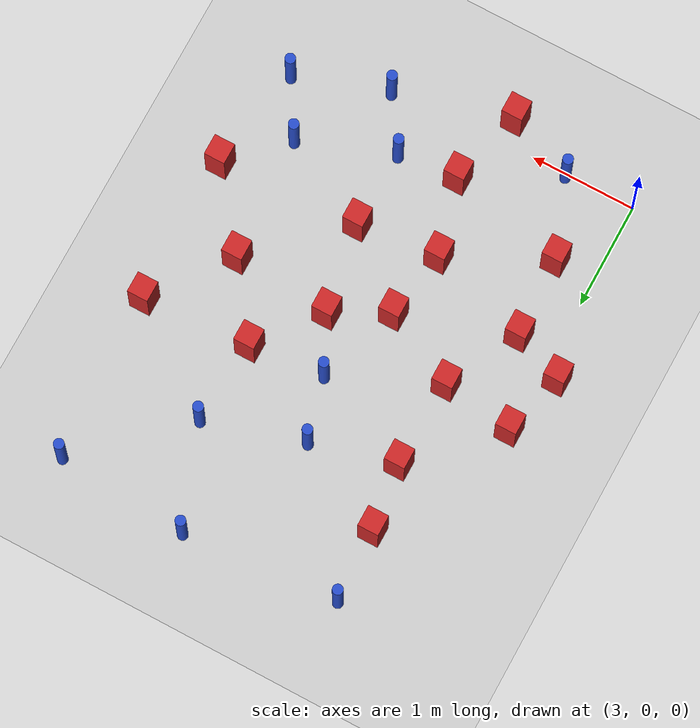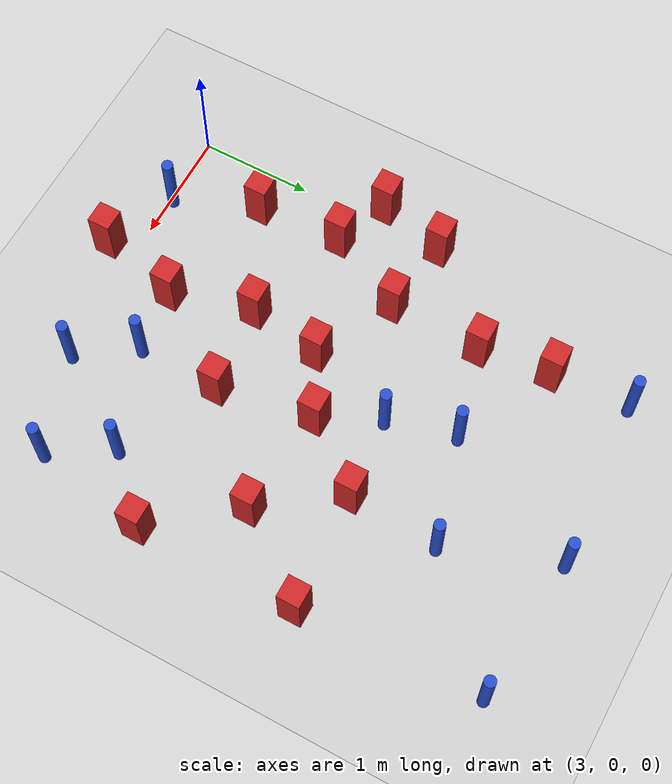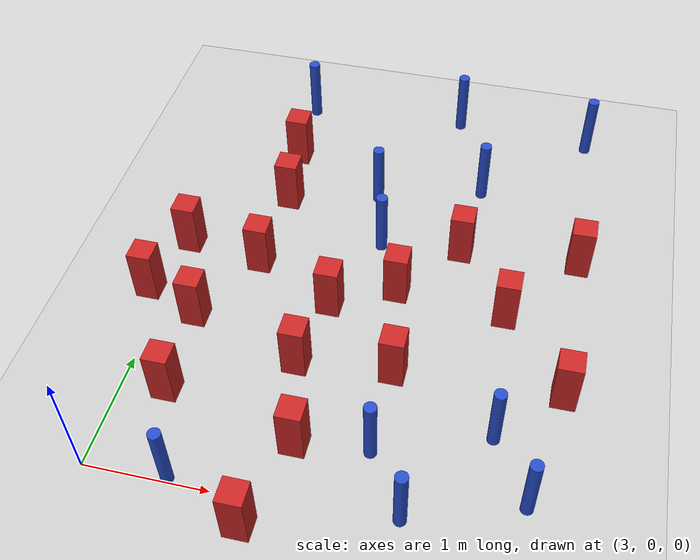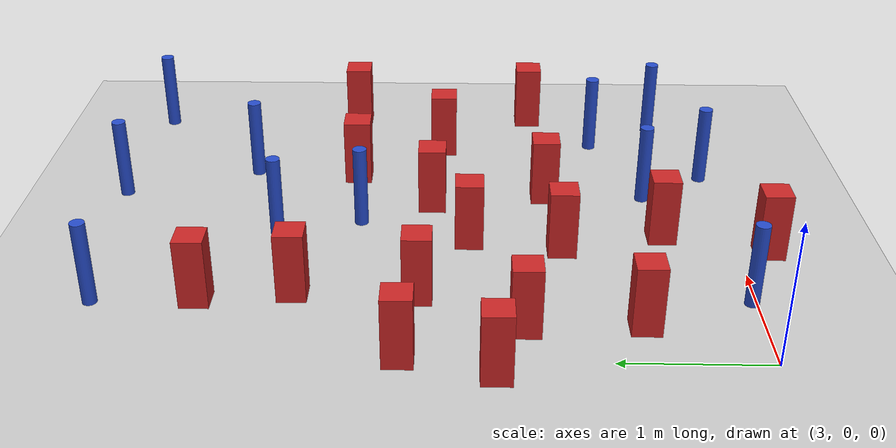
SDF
<sdf version="1.6">
 <world name="default">
  <model name="ground_plane">
   <static>1</static>
   <link name="link">
    <collision name="collision">
     <geometry><plane><normal>0 0 1</normal><size>100 100</size></plane></geometry>
     <surface><friction><ode><mu>100</mu><mu2>50</mu2></ode></friction></surface>
    </collision>
    <visual name="visual">
     <cast_shadows>0</cast_shadows>
     <geometry><plane><normal>0 0 1</normal><size>100 100</size></plane></geometry>
     <material>
      <ambient>1.0 1.0 1.0 1.0</ambient>
      <diffuse>0.8 0.8 0.8 1.0</diffuse>
      <specular>0.01 0.01 0.01 1.000000</specular>
     </material>
    </visual>
   </link>
  </model>
  <model name="pole_obstacle5">
   <static>true</static>
   <pose>4.51118579981 3.26232769423 2.88873142074e-08 -9.90536690245e-09 4.6021994898e-07 -1.20965994966e-07</pose>
   <link name="link">
    <pose>0 0 0.3 0 -0 0</pose>
    <inertial>
     <mass>1</mass>
     <inertia><ixx>0.145833</ixx><ixy>0</ixy><ixz>0</ixz><iyy>0.145833</iyy><iyz>0</iyz><izz>0.125</izz></inertia>
    </inertial>
    <collision name="collision">
     <geometry><cylinder><radius>0.05</radius><length>.6</length></cylinder></geometry>
    </collision>
    <visual name="visual">
     <geometry><cylinder><radius>0.05</radius><length>.6</length></cylinder></geometry>
     <material>
      <script><name>Gazebo/Blue</name><uri>file://media/materials/scripts/gazebo.material</uri></script>
     </material>
    </visual>
   </link>
  </model>
  <model name="square_post_obstacle20">
   <static>true</static>
   <pose>5.0686060429 1.31491274557 8.22691968438e-08 7.2212513382e-06 -7.54495500217e-07 2.29674213826e-05</pose>
   <link name="link">
    <pose>0 0 0.25 0 -0 0</pose>
    <inertial>
     <mass>100</mass>
     <inertia>
      <ixx>0.166667</ixx>
      <ixy>0</ixy>
      <ixz>0</ixz>
      <iyy>0.166667</iyy>
      <iyz>0</iyz>
      <izz>0.166667</izz>
     </inertia>
    </inertial>
    <collision name="collision"><geometry><box><size>.2 .2 .5</size></box></geometry></collision>
    <visual name="visual">
     <geometry><box><size>.2 .2 .5</size></box></geometry>
     <material>
      <script><name>Gazebo/Red</name><uri>file://media/materials/scripts/gazebo.material</uri></script>
     </material>
    </visual>
   </link>
  </model>
  <model name="square_post_obstacle23">
   <static>true</static>
   <pose>4.29525000992 -0.212206736863 8.22691968438e-08 7.2212513382e-06 -7.54495500217e-07 2.29674213826e-05</pose>
   <link name="link">
    <pose>0 0 0.25 0 -0 0</pose>
    <inertial>
     <mass>100</mass>
     <inertia>
      <ixx>0.166667</ixx>
      <ixy>0</ixy>
      <ixz>0</ixz>
      <iyy>0.166667</iyy>
      <iyz>0</iyz>
      <izz>0.166667</izz>
     </inertia>
    </inertial>
    <collision name="collision"><geometry><box><size>.2 .2 .5</size></box></geometry></collision>
    <visual name="visual">
     <geometry><box><size>.2 .2 .5</size></box></geometry>
     <material>
      <script><name>Gazebo/Red</name><uri>file://media/materials/scripts/gazebo.material</uri></script>
     </material>
    </visual>
   </link>
  </model>
  <model name="square_post_obstacle30">
   <static>true</static>
   <pose>5.85793373275 2.08116270976 8.22691968438e-08 7.2212513382e-06 -7.54495500217e-07 2.29674213826e-05</pose>
   <link name="link">
    <pose>0 0 0.25 0 -0 0</pose>
    <inertial>
     <mass>100</mass>
     <inertia>
      <ixx>0.166667</ixx>
      <ixy>0</ixy>
      <ixz>0</ixz>
      <iyy>0.166667</iyy>
      <iyz>0</iyz>
      <izz>0.166667</izz>
     </inertia>
    </inertial>
    <collision name="collision"><geometry><box><size>.2 .2 .5</size></box></geometry></collision>
    <visual name="visual">
     <geometry><box><size>.2 .2 .5</size></box></geometry>
     <material>
      <script><name>Gazebo/Red</name><uri>file://media/materials/scripts/gazebo.material</uri></script>
     </material>
    </visual>
   </link>
  </model>
  <model name="pole_obstacle26">
   <static>true</static>
   <pose>5.4399115924 3.53323720366 2.88873142074e-08 -9.90536690245e-09 4.6021994898e-07 -1.20965994966e-07</pose>
   <link name="link">
    <pose>0 0 0.3 0 -0 0</pose>
    <inertial>
     <mass>1</mass>
     <inertia><ixx>0.145833</ixx><ixy>0</ixy><ixz>0</ixz><iyy>0.145833</iyy><iyz>0</iyz><izz>0.125</izz></inertia>
    </inertial>
    <collision name="collision">
     <geometry><cylinder><radius>0.05</radius><length>.6</length></cylinder></geometry>
    </collision>
    <visual name="visual">
     <geometry><cylinder><radius>0.05</radius><length>.6</length></cylinder></geometry>
     <material>
      <script><name>Gazebo/Blue</name><uri>file://media/materials/scripts/gazebo.material</uri></script>
     </material>
    </visual>
   </link>
  </model>
  <model name="square_post_obstacle42">
   <static>true</static>
   <pose>3.63920087591 3.68147634943 8.22691968438e-08 7.2212513382e-06 -7.54495500217e-07 2.29674213826e-05</pose>
   <link name="link">
    <pose>0 0 0.25 0 -0 0</pose>
    <inertial>
     <mass>100</mass>
     <inertia>
      <ixx>0.166667</ixx>
      <ixy>0</ixy>
      <ixz>0</ixz>
      <iyy>0.166667</iyy>
      <iyz>0</iyz>
      <izz>0.166667</izz>
     </inertia>
    </inertial>
    <collision name="collision"><geometry><box><size>.2 .2 .5</size></box></geometry></collision>
    <visual name="visual">
     <geometry><box><size>.2 .2 .5</size></box></geometry>
     <material>
      <script><name>Gazebo/Red</name><uri>file://media/materials/scripts/gazebo.material</uri></script>
     </material>
    </visual>
   </link>
  </model>
  <model name="square_post_obstacle46">
   <static>true</static>
   <pose>4.48894644158 0.51475147384 8.22691968438e-08 7.2212513382e-06 -7.54495500217e-07 2.29674213826e-05</pose>
   <link name="link">
    <pose>0 0 0.25 0 -0 0</pose>
    <inertial>
     <mass>100</mass>
     <inertia>
      <ixx>0.166667</ixx>
      <ixy>0</ixy>
      <ixz>0</ixz>
      <iyy>0.166667</iyy>
      <iyz>0</iyz>
      <izz>0.166667</izz>
     </inertia>
    </inertial>
    <collision name="collision"><geometry><box><size>.2 .2 .5</size></box></geometry></collision>
    <visual name="visual">
     <geometry><box><size>.2 .2 .5</size></box></geometry>
     <material>
      <script><name>Gazebo/Red</name><uri>file://media/materials/scripts/gazebo.material</uri></script>
     </material>
    </visual>
   </link>
  </model>
  <model name="pole_obstacle52">
   <static>true</static>
   <pose>5.93323095157 0.895569848175 2.88873142074e-08 -9.90536689837e-09 4.60219948989e-07 -1.2096599496e-07</pose>
   <link name="link">
    <pose>0 0 0.3 0 -0 0</pose>
    <inertial>
     <mass>1</mass>
     <inertia><ixx>0.145833</ixx><ixy>0</ixy><ixz>0</ixz><iyy>0.145833</iyy><iyz>0</iyz><izz>0.125</izz></inertia>
    </inertial>
    <collision name="collision">
     <geometry><cylinder><radius>0.05</radius><length>.6</length></cylinder></geometry>
    </collision>
    <visual name="visual">
     <geometry><cylinder><radius>0.05</radius><length>.6</length></cylinder></geometry>
     <material>
      <script><name>Gazebo/Blue</name><uri>file://media/materials/scripts/gazebo.material</uri></script>
     </material>
    </visual>
   </link>
  </model>
  <model name="square_post_obstacle60">
   <static>true</static>
   <pose>3.37698838711 0.771752956563 8.22691968438e-08 7.2212513382e-06 -7.54495500217e-07 2.29674213826e-05</pose>
   <link name="link">
    <pose>0 0 0.25 0 -0 0</pose>
    <inertial>
     <mass>100</mass>
     <inertia>
      <ixx>0.166667</ixx>
      <ixy>0</ixy>
      <ixz>0</ixz>
      <iyy>0.166667</iyy>
      <iyz>0</iyz>
      <izz>0.166667</izz>
     </inertia>
    </inertial>
    <collision name="collision"><geometry><box><size>.2 .2 .5</size></box></geometry></collision>
    <visual name="visual">
     <geometry><box><size>.2 .2 .5</size></box></geometry>
     <material>
      <script><name>Gazebo/Red</name><uri>file://media/materials/scripts/gazebo.material</uri></script>
     </material>
    </visual>
   </link>
  </model>
  <model name="pole_obstacle56">
   <static>true</static>
   <pose>6.33768137172 4.39520166497 2.88873142074e-08 -9.90536690842e-09 4.60219948965e-07 -1.20965994976e-07</pose>
   <link name="link">
    <pose>0 0 0.3 0 -0 0</pose>
    <inertial>
     <mass>1</mass>
     <inertia><ixx>0.145833</ixx><ixy>0</ixy><ixz>0</ixz><iyy>0.145833</iyy><iyz>0</iyz><izz>0.125</izz></inertia>
    </inertial>
    <collision name="collision">
     <geometry><cylinder><radius>0.05</radius><length>.6</length></cylinder></geometry>
    </collision>
    <visual name="visual">
     <geometry><cylinder><radius>0.05</radius><length>.6</length></cylinder></geometry>
     <material>
      <script><name>Gazebo/Blue</name><uri>file://media/materials/scripts/gazebo.material</uri></script>
     </material>
    </visual>
   </link>
  </model>
  <model name="square_post_obstacle66">
   <static>true</static>
   <pose>4.40175291672 1.88520417831 8.22691968438e-08 7.2212513382e-06 -7.54495500217e-07 2.29674213826e-05</pose>
   <link name="link">
    <pose>0 0 0.25 0 -0 0</pose>
    <inertial>
     <mass>100</mass>
     <inertia>
      <ixx>0.166667</ixx>
      <ixy>0</ixy>
      <ixz>0</ixz>
      <iyy>0.166667</iyy>
      <iyz>0</iyz>
      <izz>0.166667</izz>
     </inertia>
    </inertial>
    <collision name="collision"><geometry><box><size>.2 .2 .5</size></box></geometry></collision>
    <visual name="visual">
     <geometry><box><size>.2 .2 .5</size></box></geometry>
     <material>
      <script><name>Gazebo/Red</name><uri>file://media/materials/scripts/gazebo.material</uri></script>
     </material>
    </visual>
   </link>
  </model>
  <model name="square_post_obstacle78">
   <static>true</static>
   <pose>3.33992693477 1.53138632967 8.22691968438e-08 7.2212513382e-06 -7.54495500217e-07 2.29674213826e-05</pose>
   <link name="link">
    <pose>0 0 0.25 0 -0 0</pose>
    <inertial>
     <mass>100</mass>
     <inertia>
      <ixx>0.166667</ixx>
      <ixy>0</ixy>
      <ixz>0</ixz>
      <iyy>0.166667</iyy>
      <iyz>0</iyz>
      <izz>0.166667</izz>
     </inertia>
    </inertial>
    <collision name="collision"><geometry><box><size>.2 .2 .5</size></box></geometry></collision>
    <visual name="visual">
     <geometry><box><size>.2 .2 .5</size></box></geometry>
     <material>
      <script><name>Gazebo/Red</name><uri>file://media/materials/scripts/gazebo.material</uri></script>
     </material>
    </visual>
   </link>
  </model>
  <model name="square_post_obstacle91">
   <static>true</static>
   <pose>3.71915476604 3.05379048572 8.22691968438e-08 7.2212513382e-06 -7.54495500217e-07 2.29674213826e-05</pose>
   <link name="link">
    <pose>0 0 0.25 0 -0 0</pose>
    <inertial>
     <mass>100</mass>
     <inertia>
      <ixx>0.166667</ixx>
      <ixy>0</ixy>
      <ixz>0</ixz>
      <iyy>0.166667</iyy>
      <iyz>0</iyz>
      <izz>0.166667</izz>
     </inertia>
    </inertial>
    <collision name="collision"><geometry><box><size>.2 .2 .5</size></box></geometry></collision>
    <visual name="visual">
     <geometry><box><size>.2 .2 .5</size></box></geometry>
     <material>
      <script><name>Gazebo/Red</name><uri>file://media/materials/scripts/gazebo.material</uri></script>
     </material>
    </visual>
   </link>
  </model>
  <model name="pole_obstacle121">
   <static>true</static>
   <pose>5.38386186313 0.0893494037501 2.88873142074e-08 -9.90536689727e-09 4.60219948992e-07 -1.20965994958e-07</pose>
   <link name="link">
    <pose>0 0 0.3 0 -0 0</pose>
    <inertial>
     <mass>1</mass>
     <inertia><ixx>0.145833</ixx><ixy>0</ixy><ixz>0</ixz><iyy>0.145833</iyy><iyz>0</iyz><izz>0.125</izz></inertia>
    </inertial>
    <collision name="collision">
     <geometry><cylinder><radius>0.05</radius><length>.6</length></cylinder></geometry>
    </collision>
    <visual name="visual">
     <geometry><cylinder><radius>0.05</radius><length>.6</length></cylinder></geometry>
     <material>
      <script><name>Gazebo/Blue</name><uri>file://media/materials/scripts/gazebo.material</uri></script>
     </material>
    </visual>
   </link>
  </model>
  <model name="pole_obstacle136">
   <static>true</static>
   <pose>5.05675831988 0.576966402563 2.88873142074e-08 -9.90536689837e-09 4.60219948989e-07 -1.2096599496e-07</pose>
   <link name="link">
    <pose>0 0 0.3 0 -0 0</pose>
    <inertial>
     <mass>1</mass>
     <inertia><ixx>0.145833</ixx><ixy>0</ixy><ixz>0</ixz><iyy>0.145833</iyy><iyz>0</iyz><izz>0.125</izz></inertia>
    </inertial>
    <collision name="collision">
     <geometry><cylinder><radius>0.05</radius><length>.6</length></cylinder></geometry>
    </collision>
    <visual name="visual">
     <geometry><cylinder><radius>0.05</radius><length>.6</length></cylinder></geometry>
     <material>
      <script><name>Gazebo/Blue</name><uri>file://media/materials/scripts/gazebo.material</uri></script>
     </material>
    </visual>
   </link>
  </model>
  <model name="square_post_obstacle125">
   <static>true</static>
   <pose>6.39974700157 2.79981422828 8.22691968438e-08 7.2212513382e-06 -7.54495500217e-07 2.29674213826e-05</pose>
   <link name="link">
    <pose>0 0 0.25 0 -0 0</pose>
    <inertial>
     <mass>100</mass>
     <inertia>
      <ixx>0.166667</ixx>
      <ixy>0</ixy>
      <ixz>0</ixz>
      <iyy>0.166667</iyy>
      <iyz>0</iyz>
      <izz>0.166667</izz>
     </inertia>
    </inertial>
    <collision name="collision"><geometry><box><size>.2 .2 .5</size></box></geometry></collision>
    <visual name="visual">
     <geometry><box><size>.2 .2 .5</size></box></geometry>
     <material>
      <script><name>Gazebo/Red</name><uri>file://media/materials/scripts/gazebo.material</uri></script>
     </material>
    </visual>
   </link>
  </model>
  <model name="square_post_obstacle131">
   <static>true</static>
   <pose>3.01463073073 2.3261112437 8.22691968438e-08 7.2212513382e-06 -7.54495500217e-07 2.29674213826e-05</pose>
   <link name="link">
    <pose>0 0 0.25 0 -0 0</pose>
    <inertial>
     <mass>100</mass>
     <inertia>
      <ixx>0.166667</ixx>
      <ixy>0</ixy>
      <ixz>0</ixz>
      <iyy>0.166667</iyy>
      <iyz>0</iyz>
      <izz>0.166667</izz>
     </inertia>
    </inertial>
    <collision name="collision"><geometry><box><size>.2 .2 .5</size></box></geometry></collision>
    <visual name="visual">
     <geometry><box><size>.2 .2 .5</size></box></geometry>
     <material>
      <script><name>Gazebo/Red</name><uri>file://media/materials/scripts/gazebo.material</uri></script>
     </material>
    </visual>
   </link>
  </model>
  <model name="pole_obstacle148">
   <static>true</static>
   <pose>3.66133573947 0.0350118903744 2.88873142074e-08 -9.905366921e-09 4.60219948936e-07 -1.20965994985e-07</pose>
   <link name="link">
    <pose>0 0 0.3 0 -0 0</pose>
    <inertial>
     <mass>1</mass>
     <inertia><ixx>0.145833</ixx><ixy>0</ixy><ixz>0</ixz><iyy>0.145833</iyy><iyz>0</iyz><izz>0.125</izz></inertia>
    </inertial>
    <collision name="collision">
     <geometry><cylinder><radius>0.05</radius><length>.6</length></cylinder></geometry>
    </collision>
    <visual name="visual">
     <geometry><cylinder><radius>0.05</radius><length>.6</length></cylinder></geometry>
     <material>
      <script><name>Gazebo/Blue</name><uri>file://media/materials/scripts/gazebo.material</uri></script>
     </material>
    </visual>
   </link>
  </model>
  <model name="square_post_obstacle156">
   <static>true</static>
   <pose>3.69256095524 2.22914644534 8.22691968438e-08 7.2212513382e-06 -7.54495500217e-07 2.29674213826e-05</pose>
   <link name="link">
    <pose>0 0 0.25 0 -0 0</pose>
    <inertial>
     <mass>100</mass>
     <inertia>
      <ixx>0.166667</ixx>
      <ixy>0</ixy>
      <ixz>0</ixz>
      <iyy>0.166667</iyy>
      <iyz>0</iyz>
      <izz>0.166667</izz>
     </inertia>
    </inertial>
    <collision name="collision"><geometry><box><size>.2 .2 .5</size></box></geometry></collision>
    <visual name="visual">
     <geometry><box><size>.2 .2 .5</size></box></geometry>
     <material>
      <script><name>Gazebo/Red</name><uri>file://media/materials/scripts/gazebo.material</uri></script>
     </material>
    </visual>
   </link>
  </model>
  <model name="square_post_obstacle167">
   <static>true</static>
   <pose>5.37731935531 2.73596172315 8.22691968438e-08 7.2212513382e-06 -7.54495500217e-07 2.29674213826e-05</pose>
   <link name="link">
    <pose>0 0 0.25 0 -0 0</pose>
    <inertial>
     <mass>100</mass>
     <inertia>
      <ixx>0.166667</ixx>
      <ixy>0</ixy>
      <ixz>0</ixz>
      <iyy>0.166667</iyy>
      <iyz>0</iyz>
      <izz>0.166667</izz>
     </inertia>
    </inertial>
    <collision name="collision"><geometry><box><size>.2 .2 .5</size></box></geometry></collision>
    <visual name="visual">
     <geometry><box><size>.2 .2 .5</size></box></geometry>
     <material>
      <script><name>Gazebo/Red</name><uri>file://media/materials/scripts/gazebo.material</uri></script>
     </material>
    </visual>
   </link>
  </model>
  <model name="square_post_obstacle169">
   <static>true</static>
   <pose>6.41238482958 1.38230210569 8.22691968438e-08 7.2212513382e-06 -7.54495500217e-07 2.29674213826e-05</pose>
   <link name="link">
    <pose>0 0 0.25 0 -0 0</pose>
    <inertial>
     <mass>100</mass>
     <inertia>
      <ixx>0.166667</ixx>
      <ixy>0</ixy>
      <ixz>0</ixz>
      <iyy>0.166667</iyy>
      <iyz>0</iyz>
      <izz>0.166667</izz>
     </inertia>
    </inertial>
    <collision name="collision"><geometry><box><size>.2 .2 .5</size></box></geometry></collision>
    <visual name="visual">
     <geometry><box><size>.2 .2 .5</size></box></geometry>
     <material>
      <script><name>Gazebo/Red</name><uri>file://media/materials/scripts/gazebo.material</uri></script>
     </material>
    </visual>
   </link>
  </model>
  <model name="pole_obstacle181">
   <static>true</static>
   <pose>3.60951223226 4.3780112034 2.88873142074e-08 -9.90536689859e-09 4.60219948989e-07 -1.20965994961e-07</pose>
   <link name="link">
    <pose>0 0 0.3 0 -0 0</pose>
    <inertial>
     <mass>1</mass>
     <inertia><ixx>0.145833</ixx><ixy>0</ixy><ixz>0</ixz><iyy>0.145833</iyy><iyz>0</iyz><izz>0.125</izz></inertia>
    </inertial>
    <collision name="collision">
     <geometry><cylinder><radius>0.05</radius><length>.6</length></cylinder></geometry>
    </collision>
    <visual name="visual">
     <geometry><cylinder><radius>0.05</radius><length>.6</length></cylinder></geometry>
     <material>
      <script><name>Gazebo/Blue</name><uri>file://media/materials/scripts/gazebo.material</uri></script>
     </material>
    </visual>
   </link>
  </model>
  <model name="pole_obstacle183">
   <static>true</static>
   <pose>6.24775035731 0.37948895148 2.88873142074e-08 -9.90536689981e-09 4.60219948986e-07 -1.20965994962e-07</pose>
   <link name="link">
    <pose>0 0 0.3 0 -0 0</pose>
    <inertial>
     <mass>1</mass>
     <inertia><ixx>0.145833</ixx><ixy>0</ixy><ixz>0</ixz><iyy>0.145833</iyy><iyz>0</iyz><izz>0.125</izz></inertia>
    </inertial>
    <collision name="collision">
     <geometry><cylinder><radius>0.05</radius><length>.6</length></cylinder></geometry>
    </collision>
    <visual name="visual">
     <geometry><cylinder><radius>0.05</radius><length>.6</length></cylinder></geometry>
     <material>
      <script><name>Gazebo/Blue</name><uri>file://media/materials/scripts/gazebo.material</uri></script>
     </material>
    </visual>
   </link>
  </model>
  <model name="square_post_obstacle178">
   <static>true</static>
   <pose>4.29655881862 1.23748709382 8.22691968438e-08 7.2212513382e-06 -7.54495500217e-07 2.29674213826e-05</pose>
   <link name="link">
    <pose>0 0 0.25 0 -0 0</pose>
    <inertial>
     <mass>100</mass>
     <inertia>
      <ixx>0.166667</ixx>
      <ixy>0</ixy>
      <ixz>0</ixz>
      <iyy>0.166667</iyy>
      <iyz>0</iyz>
      <izz>0.166667</izz>
     </inertia>
    </inertial>
    <collision name="collision"><geometry><box><size>.2 .2 .5</size></box></geometry></collision>
    <visual name="visual">
     <geometry><box><size>.2 .2 .5</size></box></geometry>
     <material>
      <script><name>Gazebo/Red</name><uri>file://media/materials/scripts/gazebo.material</uri></script>
     </material>
    </visual>
   </link>
  </model>
  <model name="pole_obstacle197">
   <static>true</static>
   <pose>5.08666304575 4.48925991454 2.88873142074e-08 -9.90536690842e-09 4.60219948965e-07 -1.20965994976e-07</pose>
   <link name="link">
    <pose>0 0 0.3 0 -0 0</pose>
    <inertial>
     <mass>1</mass>
     <inertia><ixx>0.145833</ixx><ixy>0</ixy><ixz>0</ixz><iyy>0.145833</iyy><iyz>0</iyz><izz>0.125</izz></inertia>
    </inertial>
    <collision name="collision">
     <geometry><cylinder><radius>0.05</radius><length>.6</length></cylinder></geometry>
    </collision>
    <visual name="visual">
     <geometry><cylinder><radius>0.05</radius><length>.6</length></cylinder></geometry>
     <material>
      <script><name>Gazebo/Blue</name><uri>file://media/materials/scripts/gazebo.material</uri></script>
     </material>
    </visual>
   </link>
  </model>
  <model name="pole_obstacle198">
   <static>true</static>
   <pose>4.67246720882 2.66709831216 2.88873142074e-08 -9.90536690245e-09 4.6021994898e-07 -1.20965994966e-07</pose>
   <link name="link">
    <pose>0 0 0.3 0 -0 0</pose>
    <inertial>
     <mass>1</mass>
     <inertia><ixx>0.145833</ixx><ixy>0</ixy><ixz>0</ixz><iyy>0.145833</iyy><iyz>0</iyz><izz>0.125</izz></inertia>
    </inertial>
    <collision name="collision">
     <geometry><cylinder><radius>0.05</radius><length>.6</length></cylinder></geometry>
    </collision>
    <visual name="visual">
     <geometry><cylinder><radius>0.05</radius><length>.6</length></cylinder></geometry>
     <material>
      <script><name>Gazebo/Blue</name><uri>file://media/materials/scripts/gazebo.material</uri></script>
     </material>
    </visual>
   </link>
  </model>
  <model name="square_post_obstacle206">
   <static>true</static>
   <pose>4.92125003262 2.15528996466 8.22691968438e-08 7.2212513382e-06 -7.54495500217e-07 2.29674213826e-05</pose>
   <link name="link">
    <pose>0 0 0.25 0 -0 0</pose>
    <inertial>
     <mass>100</mass>
     <inertia>
      <ixx>0.166667</ixx>
      <ixy>0</ixy>
      <ixz>0</ixz>
      <iyy>0.166667</iyy>
      <iyz>0</iyz>
      <izz>0.166667</izz>
     </inertia>
    </inertial>
    <collision name="collision"><geometry><box><size>.2 .2 .5</size></box></geometry></collision>
    <visual name="visual">
     <geometry><box><size>.2 .2 .5</size></box></geometry>
     <material>
      <script><name>Gazebo/Red</name><uri>file://media/materials/scripts/gazebo.material</uri></script>
     </material>
    </visual>
   </link>
  </model>
  <model name="square_post_obstacle212">
   <static>true</static>
   <pose>2.85872003262 1.72787996466 8.22691968438e-08 7.22125133819e-06 -7.54495500217e-07 2.29674213826e-05</pose>
   <link name="link">
    <pose>0 0 0.25 0 -0 0</pose>
    <inertial>
     <mass>100</mass>
     <inertia>
      <ixx>0.166667</ixx>
      <ixy>0</ixy>
      <ixz>0</ixz>
      <iyy>0.166667</iyy>
      <iyz>0</iyz>
      <izz>0.166667</izz>
     </inertia>
    </inertial>
    <collision name="collision"><geometry><box><size>.2 .2 .5</size></box></geometry></collision>
    <visual name="visual">
     <geometry><box><size>.2 .2 .5</size></box></geometry>
     <material>
      <script><name>Gazebo/Red</name><uri>file://media/materials/scripts/gazebo.material</uri></script>
     </material>
    </visual>
   </link>
  </model>
 </world>
</sdf>
